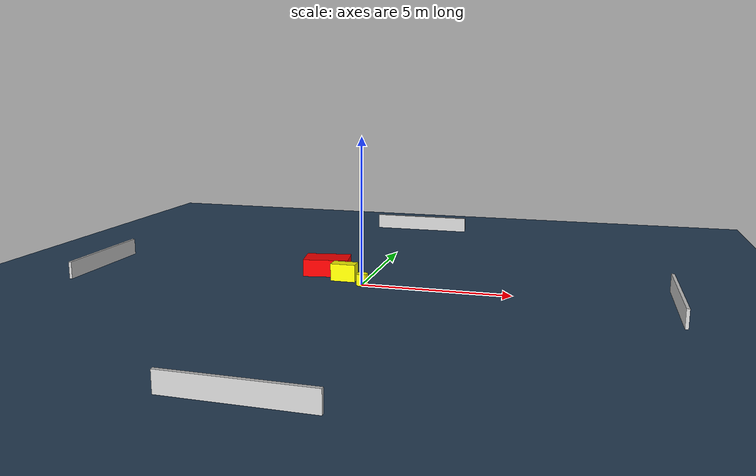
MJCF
<?xml version="1.0" ?>
<mujoco model="generated_environment">
  <option timestep="0.01" integrator="RK4" cone="elliptic"/>
  <default>
    <geom density="1"/>
  </default>
  <asset>
    <texture builtin="gradient" height="3072" name="skybox" rgb1="0.3 0.5 0.7" rgb2="0 0 0" type="skybox" width="512"/>
    <texture builtin="checker" height="300" name="groundplane" rgb1="0.2 0.3 0.4" rgb2="0.1 0.2 0.3" type="2d" width="300"/>
    <material name="groundplane" reflectance="0.2" texrepeat="5 5" texture="groundplane"/>
  </asset>
  <worldbody>
    <light dir="0 0 -1" directional="true" pos="0 0 1.5"/>
    <geom condim="3" friction="0.5 0.005 0.001" material="groundplane" name="floor" pos="0 0 0" size="0 0 0.05" type="plane"/>
    <body name="walls">
      <geom name="wall_1" condim="4" pos="-10.0 0.0 0.3" rgba="0.800000011920929 0.800000011920929 0.800000011920929 1.0" size="0.05 2.0 0.3" type="box"/>
      <geom name="wall_2" condim="4" pos="10.0 0.0 0.3" rgba="0.800000011920929 0.800000011920929 0.800000011920929 1.0" size="0.05 2.0 0.3" type="box"/>
      <geom name="wall_3" condim="4" pos="0.0 -10.0 0.3" rgba="0.800000011920929 0.800000011920929 0.800000011920929 1.0" size="2.0 0.05 0.3" type="box"/>
      <geom name="wall_4" condim="4" pos="0.0 10.0 0.3" rgba="0.800000011920929 0.800000011920929 0.800000011920929 1.0" size="2.0 0.05 0.3" type="box"/>
    </body>
    <body name="robot">
      <joint name="joint_x" type="slide" pos="0 0 0" axis="1 0 0"/>
      <joint name="joint_y" type="slide" pos="0 0 0" axis="0 1 0"/>
      <geom name="robot" type="cylinder" pos="0.0 0.0 0.2" size="0.2 0.2 0.0" mass="5.0" friction="1.0 0.005 0.0001" condim="4" rgba="1.0 1.0 0.0 1.0"/>
    </body>
    <body name="obstacle_1_movable">
      <geom name="obstacle_1_movable" condim="4" pos="-0.7693555971070073 0.47094814251842954 0.3" euler="0 0 89.81701683124524" friction="0.0 0.005 0.001" rgba="1.0 1.0 0.0 1.0" size="0.23538140945488978 0.43327449999367984 0.3" type="box" mass="0.1"/>
      <joint type="free"/>
    </body>
    <body name="obstacle_2_static">
      <geom name="obstacle_2_static" condim="4" pos="-1.6167577632022152 1.1709245718561314 0.3" euler="0 0 279.6615187158786" friction="0.0 0.005 0.001" rgba="1.0 0.0 0.0 1.0" size="0.5110023134783919 0.7946731212053502 0.3" type="box"/>
    </body>
  </worldbody>
  <actuator>
    <motor name="actuator_x" joint="joint_x" gear="1" ctrlrange="-1 1"/>
    <motor name="actuator_y" joint="joint_y" gear="1" ctrlrange="-1 1"/>
  </actuator>
</mujoco>
